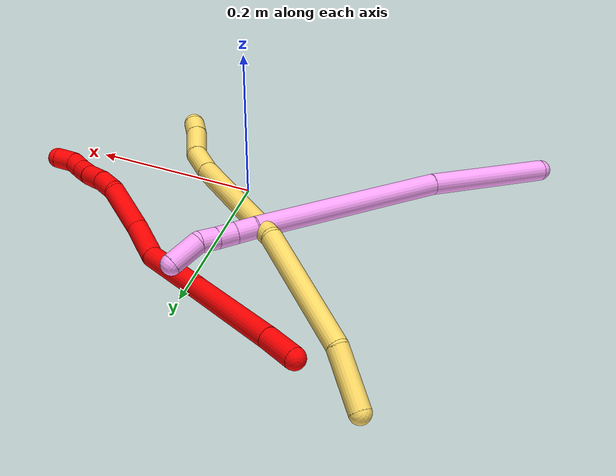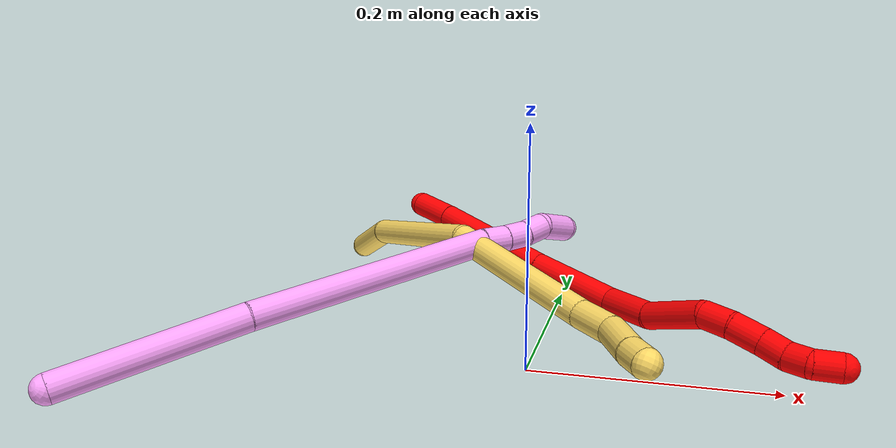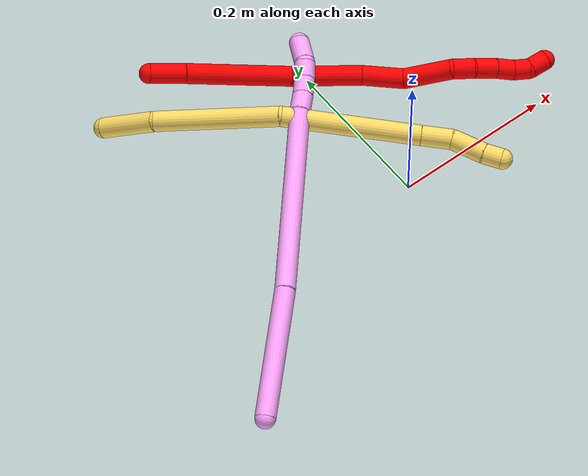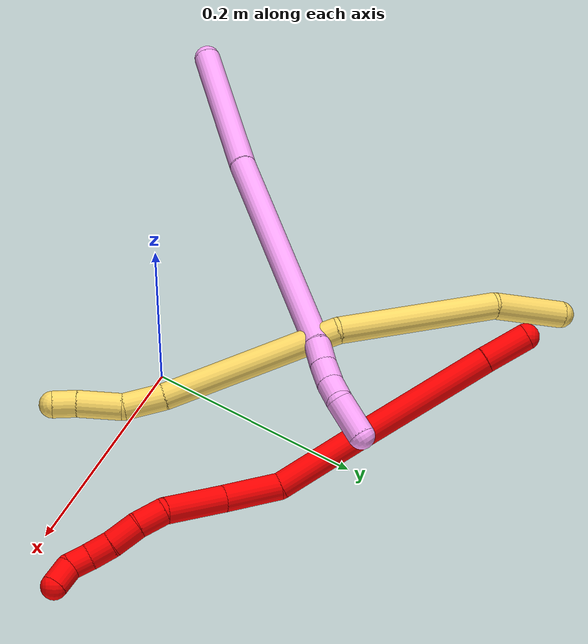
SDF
<sdf version="1.7">
 <world name="default">
  <model name="2">
   <static>0</static>
   <link name="2">
    <collision name="collision-cylinder-e_1_1_4">
     <pose>0.0088 -0.0065 -0.018829 2.8092 0.416017 1.79851</pose>
     <geometry><cylinder><radius>0.0125</radius><length>0.043554</length></cylinder></geometry>
     <surface>
      <friction><ode><mu>1.16</mu><mu2>1.16</mu2><slip1>0</slip1><slip2>0</slip2></ode></friction>
      <contact><ode><kp>1e+06</kp><kd>1</kd><max_vel>0</max_vel><min_depth>0.001</min_depth></ode></contact>
     </surface>
    </collision>
    <visual name="visual-cylinder-e_1_1_4">
     <pose>0.0088 -0.0065 -0.018829 2.8092 0.416017 1.79851</pose>
     <geometry><cylinder><radius>0.0125</radius><length>0.043554</length></cylinder></geometry>
     <material><ambient>1 0 0 1</ambient></material>
    </visual>
    <collision name="collision-cylinder-e_2_4_5">
     <pose>0.046963 -0.031089 -0.093341 2.82748 0.46485 1.96234</pose>
     <geometry><cylinder><radius>0.0125</radius><length>0.130996</length></cylinder></geometry>
     <surface>
      <friction><ode><mu>1.16</mu><mu2>1.16</mu2><slip1>0</slip1><slip2>0</slip2></ode></friction>
      <contact><ode><kp>1e+06</kp><kd>1</kd><max_vel>0</max_vel><min_depth>0.001</min_depth></ode></contact>
     </surface>
    </collision>
    <visual name="visual-cylinder-e_2_4_5">
     <pose>0.046963 -0.031089 -0.093341 2.82748 0.46485 1.96234</pose>
     <geometry><cylinder><radius>0.0125</radius><length>0.130996</length></cylinder></geometry>
     <material><ambient>1 0 0 1</ambient></material>
    </visual>
    <collision name="collision-cylinder-e_3_5_6">
     <pose>0.095811 -0.063214 -0.186856 2.78633 0.449891 1.81108</pose>
     <geometry><cylinder><radius>0.0125</radius><length>0.089619</length></cylinder></geometry>
     <surface>
      <friction><ode><mu>1.16</mu><mu2>1.16</mu2><slip1>0</slip1><slip2>0</slip2></ode></friction>
      <contact><ode><kp>1e+06</kp><kd>1</kd><max_vel>0</max_vel><min_depth>0.001</min_depth></ode></contact>
     </surface>
    </collision>
    <visual name="visual-cylinder-e_3_5_6">
     <pose>0.095811 -0.063214 -0.186856 2.78633 0.449891 1.81108</pose>
     <geometry><cylinder><radius>0.0125</radius><length>0.089619</length></cylinder></geometry>
     <material><ambient>1 0 0 1</ambient></material>
    </visual>
    <collision name="collision-cylinder-e_4_6_7">
     <pose>0.119128 -0.082254 -0.250364 2.94909 0.145408 1.29258</pose>
     <geometry><cylinder><radius>0.0125</radius><length>0.052879</length></cylinder></geometry>
     <surface>
      <friction><ode><mu>1.16</mu><mu2>1.16</mu2><slip1>0</slip1><slip2>0</slip2></ode></friction>
      <contact><ode><kp>1e+06</kp><kd>1</kd><max_vel>0</max_vel><min_depth>0.001</min_depth></ode></contact>
     </surface>
    </collision>
    <visual name="visual-cylinder-e_4_6_7">
     <pose>0.119128 -0.082254 -0.250364 2.94909 0.145408 1.29258</pose>
     <geometry><cylinder><radius>0.0125</radius><length>0.052879</length></cylinder></geometry>
     <material><ambient>1 0 0 1</ambient></material>
    </visual>
    <collision name="collision-cylinder-e_5_7_8">
     <pose>0.121841 -0.099973 -0.303377 2.70623 -0.037069 -0.167223</pose>
     <geometry><cylinder><radius>0.0125</radius><length>0.060337</length></cylinder></geometry>
     <surface>
      <friction><ode><mu>1.16</mu><mu2>1.16</mu2><slip1>0</slip1><slip2>0</slip2></ode></friction>
      <contact><ode><kp>1e+06</kp><kd>1</kd><max_vel>0</max_vel><min_depth>0.001</min_depth></ode></contact>
     </surface>
    </collision>
    <visual name="visual-cylinder-e_5_7_8">
     <pose>0.121841 -0.099973 -0.303377 2.70623 -0.037069 -0.167223</pose>
     <geometry><cylinder><radius>0.0125</radius><length>0.060337</length></cylinder></geometry>
     <material><ambient>1 0 0 1</ambient></material>
    </visual>
    <collision name="collision-cylinder-e_6_8_9">
     <pose>0.125536 -0.117122 -0.342567 2.78365 0.363392 1.58625</pose>
     <geometry><cylinder><radius>0.0125</radius><length>0.027083</length></cylinder></geometry>
     <surface>
      <friction><ode><mu>1.16</mu><mu2>1.16</mu2><slip1>0</slip1><slip2>0</slip2></ode></friction>
      <contact><ode><kp>1e+06</kp><kd>1</kd><max_vel>0</max_vel><min_depth>0.001</min_depth></ode></contact>
     </surface>
    </collision>
    <visual name="visual-cylinder-e_6_8_9">
     <pose>0.125536 -0.117122 -0.342567 2.78365 0.363392 1.58625</pose>
     <geometry><cylinder><radius>0.0125</radius><length>0.027083</length></cylinder></geometry>
     <material><ambient>1 0 0 1</ambient></material>
    </visual>
    <collision name="collision-cylinder-e_7_9_10">
     <pose>0.137756 -0.126004 -0.365875 2.77117 0.542514 1.95592</pose>
     <geometry><cylinder><radius>0.0125</radius><length>0.028692</length></cylinder></geometry>
     <surface>
      <friction><ode><mu>1.16</mu><mu2>1.16</mu2><slip1>0</slip1><slip2>0</slip2></ode></friction>
      <contact><ode><kp>1e+06</kp><kd>1</kd><max_vel>0</max_vel><min_depth>0.001</min_depth></ode></contact>
     </surface>
    </collision>
    <visual name="visual-cylinder-e_7_9_10">
     <pose>0.137756 -0.126004 -0.365875 2.77117 0.542514 1.95592</pose>
     <geometry><cylinder><radius>0.0125</radius><length>0.028692</length></cylinder></geometry>
     <material><ambient>1 0 0 1</ambient></material>
    </visual>
    <collision name="collision-cylinder-e_8_10_11">
     <pose>0.15047 -0.132827 -0.387267 2.90696 0.478967 2.24218</pose>
     <geometry><cylinder><radius>0.0125</radius><length>0.023032</length></cylinder></geometry>
     <surface>
      <friction><ode><mu>1.16</mu><mu2>1.16</mu2><slip1>0</slip1><slip2>0</slip2></ode></friction>
      <contact><ode><kp>1e+06</kp><kd>1</kd><max_vel>0</max_vel><min_depth>0.001</min_depth></ode></contact>
     </surface>
    </collision>
    <visual name="visual-cylinder-e_8_10_11">
     <pose>0.15047 -0.132827 -0.387267 2.90696 0.478967 2.24218</pose>
     <geometry><cylinder><radius>0.0125</radius><length>0.023032</length></cylinder></geometry>
     <material><ambient>1 0 0 1</ambient></material>
    </visual>
    <collision name="collision-cylinder-e_9_11_12">
     <pose>0.158776 -0.138931 -0.406164 2.7472 0.299793 1.29458</pose>
     <geometry><cylinder><radius>0.0125</radius><length>0.020309</length></cylinder></geometry>
     <surface>
      <friction><ode><mu>1.16</mu><mu2>1.16</mu2><slip1>0</slip1><slip2>0</slip2></ode></friction>
      <contact><ode><kp>1e+06</kp><kd>1</kd><max_vel>0</max_vel><min_depth>0.001</min_depth></ode></contact>
     </surface>
    </collision>
    <visual name="visual-cylinder-e_9_11_12">
     <pose>0.158776 -0.138931 -0.406164 2.7472 0.299793 1.29458</pose>
     <geometry><cylinder><radius>0.0125</radius><length>0.020309</length></cylinder></geometry>
     <material><ambient>1 0 0 1</ambient></material>
    </visual>
    <collision name="collision-cylinder-e_10_12_2">
     <pose>0.16675 -0.150969 -0.421774 2.24596 0.437152 0.866254</pose>
     <geometry><cylinder><radius>0.0125</radius><length>0.023501</length></cylinder></geometry>
     <surface>
      <friction><ode><mu>1.16</mu><mu2>1.16</mu2><slip1>0</slip1><slip2>0</slip2></ode></friction>
      <contact><ode><kp>1e+06</kp><kd>1</kd><max_vel>0</max_vel><min_depth>0.001</min_depth></ode></contact>
     </surface>
    </collision>
    <visual name="visual-cylinder-e_10_12_2">
     <pose>0.16675 -0.150969 -0.421774 2.24596 0.437152 0.866254</pose>
     <geometry><cylinder><radius>0.0125</radius><length>0.023501</length></cylinder></geometry>
     <material><ambient>1 0 0 1</ambient></material>
    </visual>
    <collision name="collision-sphere-2">
     <pose>0.171724 -0.159278 -0.428428 0 -0 0</pose>
     <geometry><sphere><radius>0.0125</radius></sphere></geometry>
     <surface>
      <friction><ode><mu>1.16</mu><mu2>1.16</mu2><slip1>0</slip1><slip2>0</slip2></ode></friction>
      <contact><ode><kp>1e+06</kp><kd>1</kd><max_vel>0</max_vel><min_depth>0.001</min_depth></ode></contact>
     </surface>
    </collision>
    <visual name="visual-sphere-2">
     <pose>0.171724 -0.159278 -0.428428 0 -0 0</pose>
     <geometry><sphere><radius>0.0125</radius></sphere></geometry>
     <material><ambient>1 0 0 1</ambient></material>
    </visual>
    <collision name="collision-sphere-12">
     <pose>0.161775 -0.142659 -0.415121 0 -0 0</pose>
     <geometry><sphere><radius>0.0125</radius></sphere></geometry>
     <surface>
      <friction><ode><mu>1.16</mu><mu2>1.16</mu2><slip1>0</slip1><slip2>0</slip2></ode></friction>
      <contact><ode><kp>1e+06</kp><kd>1</kd><max_vel>0</max_vel><min_depth>0.001</min_depth></ode></contact>
     </surface>
    </collision>
    <visual name="visual-sphere-12">
     <pose>0.161775 -0.142659 -0.415121 0 -0 0</pose>
     <geometry><sphere><radius>0.0125</radius></sphere></geometry>
     <material><ambient>1 0 0 1</ambient></material>
    </visual>
    <collision name="collision-sphere-11">
     <pose>0.155778 -0.135203 -0.397207 0 -0 0</pose>
     <geometry><sphere><radius>0.0125</radius></sphere></geometry>
     <surface>
      <friction><ode><mu>1.16</mu><mu2>1.16</mu2><slip1>0</slip1><slip2>0</slip2></ode></friction>
      <contact><ode><kp>1e+06</kp><kd>1</kd><max_vel>0</max_vel><min_depth>0.001</min_depth></ode></contact>
     </surface>
    </collision>
    <visual name="visual-sphere-11">
     <pose>0.155778 -0.135203 -0.397207 0 -0 0</pose>
     <geometry><sphere><radius>0.0125</radius></sphere></geometry>
     <material><ambient>1 0 0 1</ambient></material>
    </visual>
    <collision name="collision-sphere-10">
     <pose>0.145163 -0.130451 -0.377327 0 -0 0</pose>
     <geometry><sphere><radius>0.0125</radius></sphere></geometry>
     <surface>
      <friction><ode><mu>1.16</mu><mu2>1.16</mu2><slip1>0</slip1><slip2>0</slip2></ode></friction>
      <contact><ode><kp>1e+06</kp><kd>1</kd><max_vel>0</max_vel><min_depth>0.001</min_depth></ode></contact>
     </surface>
    </collision>
    <visual name="visual-sphere-10">
     <pose>0.145163 -0.130451 -0.377327 0 -0 0</pose>
     <geometry><sphere><radius>0.0125</radius></sphere></geometry>
     <material><ambient>1 0 0 1</ambient></material>
    </visual>
    <collision name="collision-sphere-9">
     <pose>0.13035 -0.121556 -0.354422 0 -0 0</pose>
     <geometry><sphere><radius>0.0125</radius></sphere></geometry>
     <surface>
      <friction><ode><mu>1.16</mu><mu2>1.16</mu2><slip1>0</slip1><slip2>0</slip2></ode></friction>
      <contact><ode><kp>1e+06</kp><kd>1</kd><max_vel>0</max_vel><min_depth>0.001</min_depth></ode></contact>
     </surface>
    </collision>
    <visual name="visual-sphere-9">
     <pose>0.13035 -0.121556 -0.354422 0 -0 0</pose>
     <geometry><sphere><radius>0.0125</radius></sphere></geometry>
     <material><ambient>1 0 0 1</ambient></material>
    </visual>
    <collision name="collision-sphere-4">
     <pose>0.017601 -0.013 -0.037658 0 -0 0</pose>
     <geometry><sphere><radius>0.0125</radius></sphere></geometry>
     <surface>
      <friction><ode><mu>1.16</mu><mu2>1.16</mu2><slip1>0</slip1><slip2>0</slip2></ode></friction>
      <contact><ode><kp>1e+06</kp><kd>1</kd><max_vel>0</max_vel><min_depth>0.001</min_depth></ode></contact>
     </surface>
    </collision>
    <visual name="visual-sphere-4">
     <pose>0.017601 -0.013 -0.037658 0 -0 0</pose>
     <geometry><sphere><radius>0.0125</radius></sphere></geometry>
     <material><ambient>1 0 0 1</ambient></material>
    </visual>
    <collision name="collision-sphere-1">
     <geometry><sphere><radius>0.0125</radius></sphere></geometry>
     <surface>
      <friction><ode><mu>1.16</mu><mu2>1.16</mu2><slip1>0</slip1><slip2>0</slip2></ode></friction>
      <contact><ode><kp>1e+06</kp><kd>1</kd><max_vel>0</max_vel><min_depth>0.001</min_depth></ode></contact>
     </surface>
    </collision>
    <visual name="visual-sphere-1">
     <geometry><sphere><radius>0.0125</radius></sphere></geometry>
     <material><ambient>1 0 0 1</ambient></material>
    </visual>
    <collision name="collision-sphere-8">
     <pose>0.120723 -0.112687 -0.330712 0 -0 0</pose>
     <geometry><sphere><radius>0.0125</radius></sphere></geometry>
     <surface>
      <friction><ode><mu>1.16</mu><mu2>1.16</mu2><slip1>0</slip1><slip2>0</slip2></ode></friction>
      <contact><ode><kp>1e+06</kp><kd>1</kd><max_vel>0</max_vel><min_depth>0.001</min_depth></ode></contact>
     </surface>
    </collision>
    <visual name="visual-sphere-8">
     <pose>0.120723 -0.112687 -0.330712 0 -0 0</pose>
     <geometry><sphere><radius>0.0125</radius></sphere></geometry>
     <material><ambient>1 0 0 1</ambient></material>
    </visual>
    <collision name="collision-sphere-5">
     <pose>0.076325 -0.049179 -0.149025 0 -0 0</pose>
     <geometry><sphere><radius>0.0125</radius></sphere></geometry>
     <surface>
      <friction><ode><mu>1.16</mu><mu2>1.16</mu2><slip1>0</slip1><slip2>0</slip2></ode></friction>
      <contact><ode><kp>1e+06</kp><kd>1</kd><max_vel>0</max_vel><min_depth>0.001</min_depth></ode></contact>
     </surface>
    </collision>
    <visual name="visual-sphere-5">
     <pose>0.076325 -0.049179 -0.149025 0 -0 0</pose>
     <geometry><sphere><radius>0.0125</radius></sphere></geometry>
     <material><ambient>1 0 0 1</ambient></material>
    </visual>
    <collision name="collision-sphere-6">
     <pose>0.115297 -0.077249 -0.224687 0 -0 0</pose>
     <geometry><sphere><radius>0.0125</radius></sphere></geometry>
     <surface>
      <friction><ode><mu>1.16</mu><mu2>1.16</mu2><slip1>0</slip1><slip2>0</slip2></ode></friction>
      <contact><ode><kp>1e+06</kp><kd>1</kd><max_vel>0</max_vel><min_depth>0.001</min_depth></ode></contact>
     </surface>
    </collision>
    <visual name="visual-sphere-6">
     <pose>0.115297 -0.077249 -0.224687 0 -0 0</pose>
     <geometry><sphere><radius>0.0125</radius></sphere></geometry>
     <material><ambient>1 0 0 1</ambient></material>
    </visual>
    <collision name="collision-sphere-7">
     <pose>0.122959 -0.087259 -0.276041 0 -0 0</pose>
     <geometry><sphere><radius>0.0125</radius></sphere></geometry>
     <surface>
      <friction><ode><mu>1.16</mu><mu2>1.16</mu2><slip1>0</slip1><slip2>0</slip2></ode></friction>
      <contact><ode><kp>1e+06</kp><kd>1</kd><max_vel>0</max_vel><min_depth>0.001</min_depth></ode></contact>
     </surface>
    </collision>
    <visual name="visual-sphere-7">
     <pose>0.122959 -0.087259 -0.276041 0 -0 0</pose>
     <geometry><sphere><radius>0.0125</radius></sphere></geometry>
     <material><ambient>1 0 0 1</ambient></material>
    </visual>
    <inertial>
     <pose>0.093468 -0.073236 -0.216385 0 -0 0</pose>
     <mass>0.5</mass>
     <inertia>
      <ixx>0.000198</ixx>
      <ixy>0</ixy>
      <ixz>0</ixz>
      <iyy>0.000331</iyy>
      <iyz>0</iyz>
      <izz>-6.6e-05</izz>
     </inertia>
    </inertial>
   </link>
   <pose>-0.171657 0.287689 0.064657 -1.71237 1.09656 0.43697</pose>
  </model>
  <model name="4">
   <static>0</static>
   <link name="4">
    <collision name="collision-cylinder-e_1_1_4">
     <pose>0.024531 0.049879 0.056201 -0.725874 0.31555 -0.120691</pose>
     <geometry><cylinder><radius>0.0125</radius><length>0.158091</length></cylinder></geometry>
     <surface>
      <friction><ode><mu>1.16</mu><mu2>1.16</mu2><slip1>0</slip1><slip2>0</slip2></ode></friction>
      <contact><ode><kp>1e+06</kp><kd>1</kd><max_vel>0</max_vel><min_depth>0.001</min_depth></ode></contact>
     </surface>
    </collision>
    <visual name="visual-cylinder-e_1_1_4">
     <pose>0.024531 0.049879 0.056201 -0.725874 0.31555 -0.120691</pose>
     <geometry><cylinder><radius>0.0125</radius><length>0.158091</length></cylinder></geometry>
     <material><ambient>1 0.65098 0.996078 1</ambient></material>
    </visual>
    <collision name="collision-cylinder-e_2_4_5">
     <pose>0.085018 0.165141 0.202749 -0.626444 0.311882 -0.101752</pose>
     <geometry><cylinder><radius>0.0125</radius><length>0.234355</length></cylinder></geometry>
     <surface>
      <friction><ode><mu>1.16</mu><mu2>1.16</mu2><slip1>0</slip1><slip2>0</slip2></ode></friction>
      <contact><ode><kp>1e+06</kp><kd>1</kd><max_vel>0</max_vel><min_depth>0.001</min_depth></ode></contact>
     </surface>
    </collision>
    <visual name="visual-cylinder-e_2_4_5">
     <pose>0.085018 0.165141 0.202749 -0.626444 0.311882 -0.101752</pose>
     <geometry><cylinder><radius>0.0125</radius><length>0.234355</length></cylinder></geometry>
     <material><ambient>1 0.65098 0.996078 1</ambient></material>
    </visual>
    <collision name="collision-cylinder-e_3_5_6">
     <pose>0.123102 0.23736 0.302876 -0.610081 0.176548 -0.05572</pose>
     <geometry><cylinder><radius>0.0125</radius><length>0.024238</length></cylinder></geometry>
     <surface>
      <friction><ode><mu>1.16</mu><mu2>1.16</mu2><slip1>0</slip1><slip2>0</slip2></ode></friction>
      <contact><ode><kp>1e+06</kp><kd>1</kd><max_vel>0</max_vel><min_depth>0.001</min_depth></ode></contact>
     </surface>
    </collision>
    <visual name="visual-cylinder-e_3_5_6">
     <pose>0.123102 0.23736 0.302876 -0.610081 0.176548 -0.05572</pose>
     <geometry><cylinder><radius>0.0125</radius><length>0.024238</length></cylinder></geometry>
     <material><ambient>1 0.65098 0.996078 1</ambient></material>
    </visual>
    <collision name="collision-cylinder-e_4_6_7">
     <pose>0.128114 0.250416 0.321586 -0.608364 0.258964 -0.081707</pose>
     <geometry><cylinder><radius>0.0125</radius><length>0.02252</length></cylinder></geometry>
     <surface>
      <friction><ode><mu>1.16</mu><mu2>1.16</mu2><slip1>0</slip1><slip2>0</slip2></ode></friction>
      <contact><ode><kp>1e+06</kp><kd>1</kd><max_vel>0</max_vel><min_depth>0.001</min_depth></ode></contact>
     </surface>
    </collision>
    <visual name="visual-cylinder-e_4_6_7">
     <pose>0.128114 0.250416 0.321586 -0.608364 0.258964 -0.081707</pose>
     <geometry><cylinder><radius>0.0125</radius><length>0.02252</length></cylinder></geometry>
     <material><ambient>1 0.65098 0.996078 1</ambient></material>
    </visual>
    <collision name="collision-cylinder-e_5_7_8">
     <pose>0.135449 0.262661 0.338803 -0.628655 0.409888 -0.134949</pose>
     <geometry><cylinder><radius>0.0125</radius><length>0.022339</length></cylinder></geometry>
     <surface>
      <friction><ode><mu>1.16</mu><mu2>1.16</mu2><slip1>0</slip1><slip2>0</slip2></ode></friction>
      <contact><ode><kp>1e+06</kp><kd>1</kd><max_vel>0</max_vel><min_depth>0.001</min_depth></ode></contact>
     </surface>
    </collision>
    <visual name="visual-cylinder-e_5_7_8">
     <pose>0.135449 0.262661 0.338803 -0.628655 0.409888 -0.134949</pose>
     <geometry><cylinder><radius>0.0125</radius><length>0.022339</length></cylinder></geometry>
     <material><ambient>1 0.65098 0.996078 1</ambient></material>
    </visual>
    <collision name="collision-cylinder-e_6_8_2">
     <pose>0.143143 0.272419 0.365671 -0.198313 0.169476 -0.0169</pose>
     <geometry><cylinder><radius>0.0125</radius><length>0.038457</length></cylinder></geometry>
     <surface>
      <friction><ode><mu>1.16</mu><mu2>1.16</mu2><slip1>0</slip1><slip2>0</slip2></ode></friction>
      <contact><ode><kp>1e+06</kp><kd>1</kd><max_vel>0</max_vel><min_depth>0.001</min_depth></ode></contact>
     </surface>
    </collision>
    <visual name="visual-cylinder-e_6_8_2">
     <pose>0.143143 0.272419 0.365671 -0.198313 0.169476 -0.0169</pose>
     <geometry><cylinder><radius>0.0125</radius><length>0.038457</length></cylinder></geometry>
     <material><ambient>1 0.65098 0.996078 1</ambient></material>
    </visual>
    <collision name="collision-sphere-2">
     <pose>0.146386 0.276153 0.384252 0 -0 0</pose>
     <geometry><sphere><radius>0.0125</radius></sphere></geometry>
     <surface>
      <friction><ode><mu>1.16</mu><mu2>1.16</mu2><slip1>0</slip1><slip2>0</slip2></ode></friction>
      <contact><ode><kp>1e+06</kp><kd>1</kd><max_vel>0</max_vel><min_depth>0.001</min_depth></ode></contact>
     </surface>
    </collision>
    <visual name="visual-sphere-2">
     <pose>0.146386 0.276153 0.384252 0 -0 0</pose>
     <geometry><sphere><radius>0.0125</radius></sphere></geometry>
     <material><ambient>1 0.65098 0.996078 1</ambient></material>
    </visual>
    <collision name="collision-sphere-4">
     <pose>0.049062 0.099758 0.112401 0 -0 0</pose>
     <geometry><sphere><radius>0.0125</radius></sphere></geometry>
     <surface>
      <friction><ode><mu>1.16</mu><mu2>1.16</mu2><slip1>0</slip1><slip2>0</slip2></ode></friction>
      <contact><ode><kp>1e+06</kp><kd>1</kd><max_vel>0</max_vel><min_depth>0.001</min_depth></ode></contact>
     </surface>
    </collision>
    <visual name="visual-sphere-4">
     <pose>0.049062 0.099758 0.112401 0 -0 0</pose>
     <geometry><sphere><radius>0.0125</radius></sphere></geometry>
     <material><ambient>1 0.65098 0.996078 1</ambient></material>
    </visual>
    <collision name="collision-sphere-1">
     <geometry><sphere><radius>0.0125</radius></sphere></geometry>
     <surface>
      <friction><ode><mu>1.16</mu><mu2>1.16</mu2><slip1>0</slip1><slip2>0</slip2></ode></friction>
      <contact><ode><kp>1e+06</kp><kd>1</kd><max_vel>0</max_vel><min_depth>0.001</min_depth></ode></contact>
     </surface>
    </collision>
    <visual name="visual-sphere-1">
     <geometry><sphere><radius>0.0125</radius></sphere></geometry>
     <material><ambient>1 0.65098 0.996078 1</ambient></material>
    </visual>
    <collision name="collision-sphere-8">
     <pose>0.1399 0.268685 0.347089 0 -0 0</pose>
     <geometry><sphere><radius>0.0125</radius></sphere></geometry>
     <surface>
      <friction><ode><mu>1.16</mu><mu2>1.16</mu2><slip1>0</slip1><slip2>0</slip2></ode></friction>
      <contact><ode><kp>1e+06</kp><kd>1</kd><max_vel>0</max_vel><min_depth>0.001</min_depth></ode></contact>
     </surface>
    </collision>
    <visual name="visual-sphere-8">
     <pose>0.1399 0.268685 0.347089 0 -0 0</pose>
     <geometry><sphere><radius>0.0125</radius></sphere></geometry>
     <material><ambient>1 0.65098 0.996078 1</ambient></material>
    </visual>
    <collision name="collision-sphere-5">
     <pose>0.120974 0.230524 0.293098 0 -0 0</pose>
     <geometry><sphere><radius>0.0125</radius></sphere></geometry>
     <surface>
      <friction><ode><mu>1.16</mu><mu2>1.16</mu2><slip1>0</slip1><slip2>0</slip2></ode></friction>
      <contact><ode><kp>1e+06</kp><kd>1</kd><max_vel>0</max_vel><min_depth>0.001</min_depth></ode></contact>
     </surface>
    </collision>
    <visual name="visual-sphere-5">
     <pose>0.120974 0.230524 0.293098 0 -0 0</pose>
     <geometry><sphere><radius>0.0125</radius></sphere></geometry>
     <material><ambient>1 0.65098 0.996078 1</ambient></material>
    </visual>
    <collision name="collision-sphere-6">
     <pose>0.125231 0.244195 0.312654 0 -0 0</pose>
     <geometry><sphere><radius>0.0125</radius></sphere></geometry>
     <surface>
      <friction><ode><mu>1.16</mu><mu2>1.16</mu2><slip1>0</slip1><slip2>0</slip2></ode></friction>
      <contact><ode><kp>1e+06</kp><kd>1</kd><max_vel>0</max_vel><min_depth>0.001</min_depth></ode></contact>
     </surface>
    </collision>
    <visual name="visual-sphere-6">
     <pose>0.125231 0.244195 0.312654 0 -0 0</pose>
     <geometry><sphere><radius>0.0125</radius></sphere></geometry>
     <material><ambient>1 0.65098 0.996078 1</ambient></material>
    </visual>
    <collision name="collision-sphere-7">
     <pose>0.130998 0.256637 0.330517 0 -0 0</pose>
     <geometry><sphere><radius>0.0125</radius></sphere></geometry>
     <surface>
      <friction><ode><mu>1.16</mu><mu2>1.16</mu2><slip1>0</slip1><slip2>0</slip2></ode></friction>
      <contact><ode><kp>1e+06</kp><kd>1</kd><max_vel>0</max_vel><min_depth>0.001</min_depth></ode></contact>
     </surface>
    </collision>
    <visual name="visual-sphere-7">
     <pose>0.130998 0.256637 0.330517 0 -0 0</pose>
     <geometry><sphere><radius>0.0125</radius></sphere></geometry>
     <material><ambient>1 0.65098 0.996078 1</ambient></material>
    </visual>
    <inertial>
     <pose>0.076404 0.148647 0.185229 0 -0 0</pose>
     <mass>0.5</mass>
     <inertia>
      <ixx>0.00122</ixx>
      <ixy>0</ixy>
      <ixz>0</ixz>
      <iyy>0.001038</iyy>
      <iyz>0</iyz>
      <izz>-0.001228</izz>
     </inertia>
    </inertial>
   </link>
   <pose>-0.33153 -0.153171 0.012599 2.38536 -0.868447 2.06927</pose>
  </model>
  <model name="5">
   <static>0</static>
   <link name="5">
    <collision name="collision-cylinder-e_1_1_4">
     <pose>0.024107 -0.025748 0.007158 1.29963 0.733947 0.568386</pose>
     <geometry><cylinder><radius>0.0125</radius><length>0.071983</length></cylinder></geometry>
     <surface>
      <friction><ode><mu>1.16</mu><mu2>1.16</mu2><slip1>0</slip1><slip2>0</slip2></ode></friction>
      <contact><ode><kp>1e+06</kp><kd>1</kd><max_vel>0</max_vel><min_depth>0.001</min_depth></ode></contact>
     </surface>
    </collision>
    <visual name="visual-cylinder-e_1_1_4">
     <pose>0.024107 -0.025748 0.007158 1.29963 0.733947 0.568386</pose>
     <geometry><cylinder><radius>0.0125</radius><length>0.071983</length></cylinder></geometry>
     <material><ambient>1 0.858824 0.4 1</ambient></material>
    </visual>
    <collision name="collision-cylinder-e_2_4_5">
     <pose>0.113426 -0.092715 0.016612 1.51518 1.00643 0.960121</pose>
     <geometry><cylinder><radius>0.0125</radius><length>0.154359</length></cylinder></geometry>
     <surface>
      <friction><ode><mu>1.16</mu><mu2>1.16</mu2><slip1>0</slip1><slip2>0</slip2></ode></friction>
      <contact><ode><kp>1e+06</kp><kd>1</kd><max_vel>0</max_vel><min_depth>0.001</min_depth></ode></contact>
     </surface>
    </collision>
    <visual name="visual-cylinder-e_2_4_5">
     <pose>0.113426 -0.092715 0.016612 1.51518 1.00643 0.960121</pose>
     <geometry><cylinder><radius>0.0125</radius><length>0.154359</length></cylinder></geometry>
     <material><ambient>1 0.858824 0.4 1</ambient></material>
    </visual>
    <collision name="collision-cylinder-e_3_5_6">
     <pose>0.256273 -0.162281 -0.00097 2.1823 1.15133 1.79028</pose>
     <geometry><cylinder><radius>0.0125</radius><length>0.170012</length></cylinder></geometry>
     <surface>
      <friction><ode><mu>1.16</mu><mu2>1.16</mu2><slip1>0</slip1><slip2>0</slip2></ode></friction>
      <contact><ode><kp>1e+06</kp><kd>1</kd><max_vel>0</max_vel><min_depth>0.001</min_depth></ode></contact>
     </surface>
    </collision>
    <visual name="visual-cylinder-e_3_5_6">
     <pose>0.256273 -0.162281 -0.00097 2.1823 1.15133 1.79028</pose>
     <geometry><cylinder><radius>0.0125</radius><length>0.170012</length></cylinder></geometry>
     <material><ambient>1 0.858824 0.4 1</ambient></material>
    </visual>
    <collision name="collision-cylinder-e_4_6_7">
     <pose>0.350792 -0.199334 -0.024335 1.95205 1.06367 1.43171</pose>
     <geometry><cylinder><radius>0.0125</radius><length>0.038625</length></cylinder></geometry>
     <surface>
      <friction><ode><mu>1.16</mu><mu2>1.16</mu2><slip1>0</slip1><slip2>0</slip2></ode></friction>
      <contact><ode><kp>1e+06</kp><kd>1</kd><max_vel>0</max_vel><min_depth>0.001</min_depth></ode></contact>
     </surface>
    </collision>
    <visual name="visual-cylinder-e_4_6_7">
     <pose>0.350792 -0.199334 -0.024335 1.95205 1.06367 1.43171</pose>
     <geometry><cylinder><radius>0.0125</radius><length>0.038625</length></cylinder></geometry>
     <material><ambient>1 0.858824 0.4 1</ambient></material>
    </visual>
    <collision name="collision-cylinder-e_5_7_8">
     <pose>0.381458 -0.222348 -0.035221 2.04789 0.707875 1.09102</pose>
     <geometry><cylinder><radius>0.0125</radius><length>0.042401</length></cylinder></geometry>
     <surface>
      <friction><ode><mu>1.16</mu><mu2>1.16</mu2><slip1>0</slip1><slip2>0</slip2></ode></friction>
      <contact><ode><kp>1e+06</kp><kd>1</kd><max_vel>0</max_vel><min_depth>0.001</min_depth></ode></contact>
     </surface>
    </collision>
    <visual name="visual-cylinder-e_5_7_8">
     <pose>0.381458 -0.222348 -0.035221 2.04789 0.707875 1.09102</pose>
     <geometry><cylinder><radius>0.0125</radius><length>0.042401</length></cylinder></geometry>
     <material><ambient>1 0.858824 0.4 1</ambient></material>
    </visual>
    <collision name="collision-cylinder-e_6_8_2">
     <pose>0.40364 -0.243588 -0.045678 1.98654 0.83664 1.19739</pose>
     <geometry><cylinder><radius>0.0125</radius><length>0.02262</length></cylinder></geometry>
     <surface>
      <friction><ode><mu>1.16</mu><mu2>1.16</mu2><slip1>0</slip1><slip2>0</slip2></ode></friction>
      <contact><ode><kp>1e+06</kp><kd>1</kd><max_vel>0</max_vel><min_depth>0.001</min_depth></ode></contact>
     </surface>
    </collision>
    <visual name="visual-cylinder-e_6_8_2">
     <pose>0.40364 -0.243588 -0.045678 1.98654 0.83664 1.19739</pose>
     <geometry><cylinder><radius>0.0125</radius><length>0.02262</length></cylinder></geometry>
     <material><ambient>1 0.858824 0.4 1</ambient></material>
    </visual>
    <collision name="collision-sphere-2">
     <pose>0.412036 -0.25052 -0.048738 0 -0 0</pose>
     <geometry><sphere><radius>0.0125</radius></sphere></geometry>
     <surface>
      <friction><ode><mu>1.16</mu><mu2>1.16</mu2><slip1>0</slip1><slip2>0</slip2></ode></friction>
      <contact><ode><kp>1e+06</kp><kd>1</kd><max_vel>0</max_vel><min_depth>0.001</min_depth></ode></contact>
     </surface>
    </collision>
    <visual name="visual-sphere-2">
     <pose>0.412036 -0.25052 -0.048738 0 -0 0</pose>
     <geometry><sphere><radius>0.0125</radius></sphere></geometry>
     <material><ambient>1 0.858824 0.4 1</ambient></material>
    </visual>
    <collision name="collision-sphere-4">
     <pose>0.048215 -0.051497 0.014317 0 -0 0</pose>
     <geometry><sphere><radius>0.0125</radius></sphere></geometry>
     <surface>
      <friction><ode><mu>1.16</mu><mu2>1.16</mu2><slip1>0</slip1><slip2>0</slip2></ode></friction>
      <contact><ode><kp>1e+06</kp><kd>1</kd><max_vel>0</max_vel><min_depth>0.001</min_depth></ode></contact>
     </surface>
    </collision>
    <visual name="visual-sphere-4">
     <pose>0.048215 -0.051497 0.014317 0 -0 0</pose>
     <geometry><sphere><radius>0.0125</radius></sphere></geometry>
     <material><ambient>1 0.858824 0.4 1</ambient></material>
    </visual>
    <collision name="collision-sphere-1">
     <geometry><sphere><radius>0.0125</radius></sphere></geometry>
     <surface>
      <friction><ode><mu>1.16</mu><mu2>1.16</mu2><slip1>0</slip1><slip2>0</slip2></ode></friction>
      <contact><ode><kp>1e+06</kp><kd>1</kd><max_vel>0</max_vel><min_depth>0.001</min_depth></ode></contact>
     </surface>
    </collision>
    <visual name="visual-sphere-1">
     <geometry><sphere><radius>0.0125</radius></sphere></geometry>
     <material><ambient>1 0.858824 0.4 1</ambient></material>
    </visual>
    <collision name="collision-sphere-8">
     <pose>0.395243 -0.236656 -0.042618 0 -0 0</pose>
     <geometry><sphere><radius>0.0125</radius></sphere></geometry>
     <surface>
      <friction><ode><mu>1.16</mu><mu2>1.16</mu2><slip1>0</slip1><slip2>0</slip2></ode></friction>
      <contact><ode><kp>1e+06</kp><kd>1</kd><max_vel>0</max_vel><min_depth>0.001</min_depth></ode></contact>
     </surface>
    </collision>
    <visual name="visual-sphere-8">
     <pose>0.395243 -0.236656 -0.042618 0 -0 0</pose>
     <geometry><sphere><radius>0.0125</radius></sphere></geometry>
     <material><ambient>1 0.858824 0.4 1</ambient></material>
    </visual>
    <collision name="collision-sphere-5">
     <pose>0.178637 -0.133934 0.018906 0 -0 0</pose>
     <geometry><sphere><radius>0.0125</radius></sphere></geometry>
     <surface>
      <friction><ode><mu>1.16</mu><mu2>1.16</mu2><slip1>0</slip1><slip2>0</slip2></ode></friction>
      <contact><ode><kp>1e+06</kp><kd>1</kd><max_vel>0</max_vel><min_depth>0.001</min_depth></ode></contact>
     </surface>
    </collision>
    <visual name="visual-sphere-5">
     <pose>0.178637 -0.133934 0.018906 0 -0 0</pose>
     <geometry><sphere><radius>0.0125</radius></sphere></geometry>
     <material><ambient>1 0.858824 0.4 1</ambient></material>
    </visual>
    <collision name="collision-sphere-6">
     <pose>0.33391 -0.190628 -0.020845 0 -0 0</pose>
     <geometry><sphere><radius>0.0125</radius></sphere></geometry>
     <surface>
      <friction><ode><mu>1.16</mu><mu2>1.16</mu2><slip1>0</slip1><slip2>0</slip2></ode></friction>
      <contact><ode><kp>1e+06</kp><kd>1</kd><max_vel>0</max_vel><min_depth>0.001</min_depth></ode></contact>
     </surface>
    </collision>
    <visual name="visual-sphere-6">
     <pose>0.33391 -0.190628 -0.020845 0 -0 0</pose>
     <geometry><sphere><radius>0.0125</radius></sphere></geometry>
     <material><ambient>1 0.858824 0.4 1</ambient></material>
    </visual>
    <collision name="collision-sphere-7">
     <pose>0.367673 -0.20804 -0.027825 0 -0 0</pose>
     <geometry><sphere><radius>0.0125</radius></sphere></geometry>
     <surface>
      <friction><ode><mu>1.16</mu><mu2>1.16</mu2><slip1>0</slip1><slip2>0</slip2></ode></friction>
      <contact><ode><kp>1e+06</kp><kd>1</kd><max_vel>0</max_vel><min_depth>0.001</min_depth></ode></contact>
     </surface>
    </collision>
    <visual name="visual-sphere-7">
     <pose>0.367673 -0.20804 -0.027825 0 -0 0</pose>
     <geometry><sphere><radius>0.0125</radius></sphere></geometry>
     <material><ambient>1 0.858824 0.4 1</ambient></material>
    </visual>
    <inertial>
     <pose>0.203334 -0.132783 -0.001104 0 -0 0</pose>
     <mass>0.5</mass>
     <inertia>
      <ixx>0.000442</ixx>
      <ixy>0</ixy>
      <ixz>0</ixz>
      <iyy>0.000915</iyy>
      <iyz>0</iyz>
      <izz>-0.000343</izz>
     </inertia>
    </inertial>
   </link>
   <pose>-0.242332 0.28852 0.01149 -0.584167 0.169513 -0.283236</pose>
  </model>
 </world>
</sdf>
